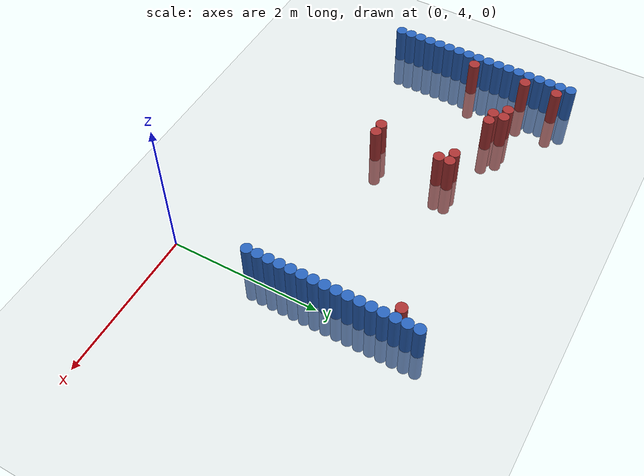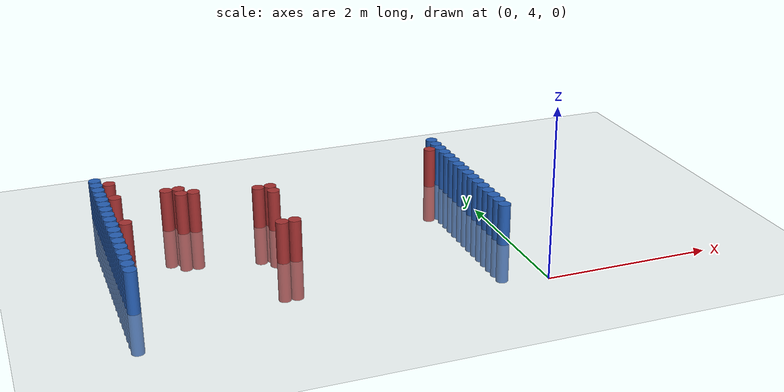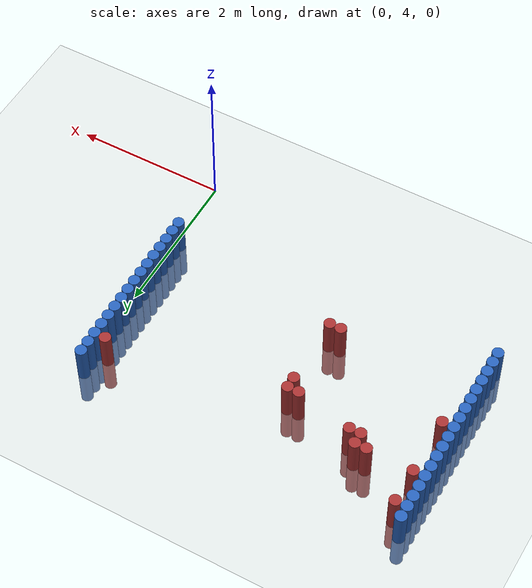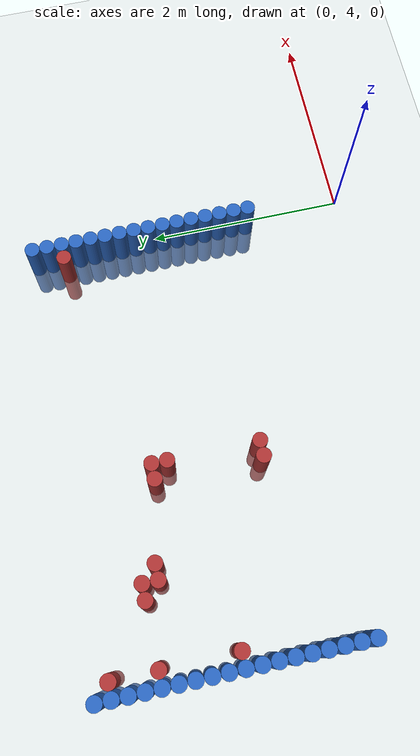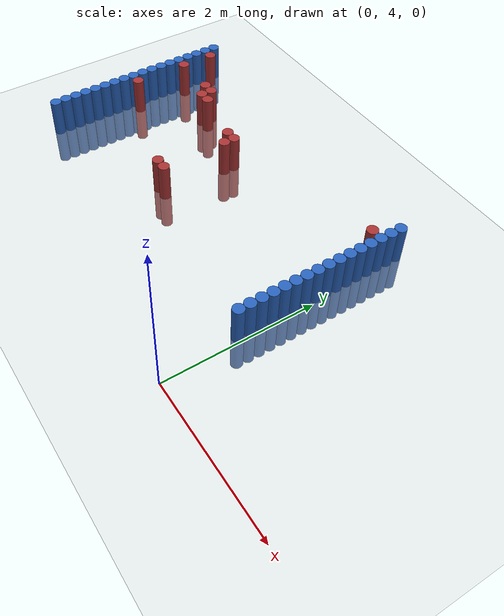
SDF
<sdf version="1.6">
 <world name="default">
  <model name="ground_plane">
   <static>1</static>
   <link name="link">
    <collision name="collision">
     <geometry><plane><normal>0 0 1</normal><size>100 100</size></plane></geometry>
     <surface><friction><ode><mu>100</mu><mu2>50</mu2></ode></friction></surface>
    </collision>
    <visual name="visual">
     <cast_shadows>0</cast_shadows>
     <geometry><plane><normal>0 0 1</normal><size>100 100</size></plane></geometry>
     <material>
      <script><uri>file://media/materials/scripts/gazebo.material</uri><name>Gazebo/Grey</name></script>
     </material>
    </visual>
   </link>
  </model>
  <model name="unit_cylinder_93">
   <static>1</static>
   <pose>-4.425000 4.875000 0.000000 0.000000 0.000000 0.000000</pose>
   <link name="link">
    <inertial>
     <mass>1</mass>
     <inertia><ixx>0.145833</ixx><ixy>0</ixy><ixz>0</ixz><iyy>0.145833</iyy><iyz>0</iyz><izz>0.125</izz></inertia>
    </inertial>
    <collision name="collision">
     <geometry><cylinder><radius>0.075000</radius><length>1</length></cylinder></geometry>
    </collision>
    <visual name="visual">
     <geometry><cylinder><radius>0.075000</radius><length>1</length></cylinder></geometry>
     <material>
      <ambient>0.152000 0.379000 0.720000 1</ambient>
      <diffuse>0.152000 0.379000 0.720000 1</diffuse>
     </material>
     <material>
      <script><name>Gazebo/Grey</name><uri>file://media/materials/scripts/gazebo.material</uri></script>
     </material>
    </visual>
   </link>
  </model>
  <model name="unit_cylinder_94">
   <static>1</static>
   <pose>-0.075000 5.025000 0.000000 0.000000 0.000000 0.000000</pose>
   <link name="link">
    <inertial>
     <mass>1</mass>
     <inertia><ixx>0.145833</ixx><ixy>0</ixy><ixz>0</ixz><iyy>0.145833</iyy><iyz>0</iyz><izz>0.125</izz></inertia>
    </inertial>
    <collision name="collision">
     <geometry><cylinder><radius>0.075000</radius><length>1</length></cylinder></geometry>
    </collision>
    <visual name="visual">
     <geometry><cylinder><radius>0.075000</radius><length>1</length></cylinder></geometry>
     <material>
      <ambient>0.152000 0.379000 0.720000 1</ambient>
      <diffuse>0.152000 0.379000 0.720000 1</diffuse>
     </material>
     <material>
      <script><name>Gazebo/Grey</name><uri>file://media/materials/scripts/gazebo.material</uri></script>
     </material>
    </visual>
   </link>
  </model>
  <model name="unit_cylinder_95">
   <static>1</static>
   <pose>-4.425000 5.025000 0.000000 0.000000 0.000000 0.000000</pose>
   <link name="link">
    <inertial>
     <mass>1</mass>
     <inertia><ixx>0.145833</ixx><ixy>0</ixy><ixz>0</ixz><iyy>0.145833</iyy><iyz>0</iyz><izz>0.125</izz></inertia>
    </inertial>
    <collision name="collision">
     <geometry><cylinder><radius>0.075000</radius><length>1</length></cylinder></geometry>
    </collision>
    <visual name="visual">
     <geometry><cylinder><radius>0.075000</radius><length>1</length></cylinder></geometry>
     <material>
      <ambient>0.152000 0.379000 0.720000 1</ambient>
      <diffuse>0.152000 0.379000 0.720000 1</diffuse>
     </material>
     <material>
      <script><name>Gazebo/Grey</name><uri>file://media/materials/scripts/gazebo.material</uri></script>
     </material>
    </visual>
   </link>
  </model>
  <model name="unit_cylinder_96">
   <static>1</static>
   <pose>-4.425000 5.175000 0.000000 0.000000 0.000000 0.000000</pose>
   <link name="link">
    <inertial>
     <mass>1</mass>
     <inertia><ixx>0.145833</ixx><ixy>0</ixy><ixz>0</ixz><iyy>0.145833</iyy><iyz>0</iyz><izz>0.125</izz></inertia>
    </inertial>
    <collision name="collision">
     <geometry><cylinder><radius>0.075000</radius><length>1</length></cylinder></geometry>
    </collision>
    <visual name="visual">
     <geometry><cylinder><radius>0.075000</radius><length>1</length></cylinder></geometry>
     <material>
      <ambient>0.152000 0.379000 0.720000 1</ambient>
      <diffuse>0.152000 0.379000 0.720000 1</diffuse>
     </material>
     <material>
      <script><name>Gazebo/Grey</name><uri>file://media/materials/scripts/gazebo.material</uri></script>
     </material>
    </visual>
   </link>
  </model>
  <model name="unit_cylinder_97">
   <static>1</static>
   <pose>-4.425000 5.325000 0.000000 0.000000 0.000000 0.000000</pose>
   <link name="link">
    <inertial>
     <mass>1</mass>
     <inertia><ixx>0.145833</ixx><ixy>0</ixy><ixz>0</ixz><iyy>0.145833</iyy><iyz>0</iyz><izz>0.125</izz></inertia>
    </inertial>
    <collision name="collision">
     <geometry><cylinder><radius>0.075000</radius><length>1</length></cylinder></geometry>
    </collision>
    <visual name="visual">
     <geometry><cylinder><radius>0.075000</radius><length>1</length></cylinder></geometry>
     <material>
      <ambient>0.152000 0.379000 0.720000 1</ambient>
      <diffuse>0.152000 0.379000 0.720000 1</diffuse>
     </material>
     <material>
      <script><name>Gazebo/Grey</name><uri>file://media/materials/scripts/gazebo.material</uri></script>
     </material>
    </visual>
   </link>
  </model>
  <model name="unit_cylinder_98">
   <static>1</static>
   <pose>-4.425000 5.475000 0.000000 0.000000 0.000000 0.000000</pose>
   <link name="link">
    <inertial>
     <mass>1</mass>
     <inertia><ixx>0.145833</ixx><ixy>0</ixy><ixz>0</ixz><iyy>0.145833</iyy><iyz>0</iyz><izz>0.125</izz></inertia>
    </inertial>
    <collision name="collision">
     <geometry><cylinder><radius>0.075000</radius><length>1</length></cylinder></geometry>
    </collision>
    <visual name="visual">
     <geometry><cylinder><radius>0.075000</radius><length>1</length></cylinder></geometry>
     <material>
      <ambient>0.152000 0.379000 0.720000 1</ambient>
      <diffuse>0.152000 0.379000 0.720000 1</diffuse>
     </material>
     <material>
      <script><name>Gazebo/Grey</name><uri>file://media/materials/scripts/gazebo.material</uri></script>
     </material>
    </visual>
   </link>
  </model>
  <model name="unit_cylinder_99">
   <static>1</static>
   <pose>-4.425000 5.625000 0.000000 0.000000 0.000000 0.000000</pose>
   <link name="link">
    <inertial>
     <mass>1</mass>
     <inertia><ixx>0.145833</ixx><ixy>0</ixy><ixz>0</ixz><iyy>0.145833</iyy><iyz>0</iyz><izz>0.125</izz></inertia>
    </inertial>
    <collision name="collision">
     <geometry><cylinder><radius>0.075000</radius><length>1</length></cylinder></geometry>
    </collision>
    <visual name="visual">
     <geometry><cylinder><radius>0.075000</radius><length>1</length></cylinder></geometry>
     <material>
      <ambient>0.152000 0.379000 0.720000 1</ambient>
      <diffuse>0.152000 0.379000 0.720000 1</diffuse>
     </material>
     <material>
      <script><name>Gazebo/Grey</name><uri>file://media/materials/scripts/gazebo.material</uri></script>
     </material>
    </visual>
   </link>
  </model>
  <model name="unit_cylinder_100">
   <static>1</static>
   <pose>-4.425000 5.775000 0.000000 0.000000 0.000000 0.000000</pose>
   <link name="link">
    <inertial>
     <mass>1</mass>
     <inertia><ixx>0.145833</ixx><ixy>0</ixy><ixz>0</ixz><iyy>0.145833</iyy><iyz>0</iyz><izz>0.125</izz></inertia>
    </inertial>
    <collision name="collision">
     <geometry><cylinder><radius>0.075000</radius><length>1</length></cylinder></geometry>
    </collision>
    <visual name="visual">
     <geometry><cylinder><radius>0.075000</radius><length>1</length></cylinder></geometry>
     <material>
      <ambient>0.152000 0.379000 0.720000 1</ambient>
      <diffuse>0.152000 0.379000 0.720000 1</diffuse>
     </material>
     <material>
      <script><name>Gazebo/Grey</name><uri>file://media/materials/scripts/gazebo.material</uri></script>
     </material>
    </visual>
   </link>
  </model>
  <model name="unit_cylinder_101">
   <static>1</static>
   <pose>-4.425000 5.925000 0.000000 0.000000 0.000000 0.000000</pose>
   <link name="link">
    <inertial>
     <mass>1</mass>
     <inertia><ixx>0.145833</ixx><ixy>0</ixy><ixz>0</ixz><iyy>0.145833</iyy><iyz>0</iyz><izz>0.125</izz></inertia>
    </inertial>
    <collision name="collision">
     <geometry><cylinder><radius>0.075000</radius><length>1</length></cylinder></geometry>
    </collision>
    <visual name="visual">
     <geometry><cylinder><radius>0.075000</radius><length>1</length></cylinder></geometry>
     <material>
      <ambient>0.152000 0.379000 0.720000 1</ambient>
      <diffuse>0.152000 0.379000 0.720000 1</diffuse>
     </material>
     <material>
      <script><name>Gazebo/Grey</name><uri>file://media/materials/scripts/gazebo.material</uri></script>
     </material>
    </visual>
   </link>
  </model>
  <model name="unit_cylinder_102">
   <static>1</static>
   <pose>-4.425000 6.075000 0.000000 0.000000 0.000000 0.000000</pose>
   <link name="link">
    <inertial>
     <mass>1</mass>
     <inertia><ixx>0.145833</ixx><ixy>0</ixy><ixz>0</ixz><iyy>0.145833</iyy><iyz>0</iyz><izz>0.125</izz></inertia>
    </inertial>
    <collision name="collision">
     <geometry><cylinder><radius>0.075000</radius><length>1</length></cylinder></geometry>
    </collision>
    <visual name="visual">
     <geometry><cylinder><radius>0.075000</radius><length>1</length></cylinder></geometry>
     <material>
      <ambient>0.152000 0.379000 0.720000 1</ambient>
      <diffuse>0.152000 0.379000 0.720000 1</diffuse>
     </material>
     <material>
      <script><name>Gazebo/Grey</name><uri>file://media/materials/scripts/gazebo.material</uri></script>
     </material>
    </visual>
   </link>
  </model>
  <model name="unit_cylinder_103">
   <static>1</static>
   <pose>-4.425000 6.225000 0.000000 0.000000 0.000000 0.000000</pose>
   <link name="link">
    <inertial>
     <mass>1</mass>
     <inertia><ixx>0.145833</ixx><ixy>0</ixy><ixz>0</ixz><iyy>0.145833</iyy><iyz>0</iyz><izz>0.125</izz></inertia>
    </inertial>
    <collision name="collision">
     <geometry><cylinder><radius>0.075000</radius><length>1</length></cylinder></geometry>
    </collision>
    <visual name="visual">
     <geometry><cylinder><radius>0.075000</radius><length>1</length></cylinder></geometry>
     <material>
      <ambient>0.152000 0.379000 0.720000 1</ambient>
      <diffuse>0.152000 0.379000 0.720000 1</diffuse>
     </material>
     <material>
      <script><name>Gazebo/Grey</name><uri>file://media/materials/scripts/gazebo.material</uri></script>
     </material>
    </visual>
   </link>
  </model>
  <model name="unit_cylinder_104">
   <static>1</static>
   <pose>-4.425000 6.375000 0.000000 0.000000 0.000000 0.000000</pose>
   <link name="link">
    <inertial>
     <mass>1</mass>
     <inertia><ixx>0.145833</ixx><ixy>0</ixy><ixz>0</ixz><iyy>0.145833</iyy><iyz>0</iyz><izz>0.125</izz></inertia>
    </inertial>
    <collision name="collision">
     <geometry><cylinder><radius>0.075000</radius><length>1</length></cylinder></geometry>
    </collision>
    <visual name="visual">
     <geometry><cylinder><radius>0.075000</radius><length>1</length></cylinder></geometry>
     <material>
      <ambient>0.152000 0.379000 0.720000 1</ambient>
      <diffuse>0.152000 0.379000 0.720000 1</diffuse>
     </material>
     <material>
      <script><name>Gazebo/Grey</name><uri>file://media/materials/scripts/gazebo.material</uri></script>
     </material>
    </visual>
   </link>
  </model>
  <model name="unit_cylinder_105">
   <static>1</static>
   <pose>-4.425000 6.525000 0.000000 0.000000 0.000000 0.000000</pose>
   <link name="link">
    <inertial>
     <mass>1</mass>
     <inertia><ixx>0.145833</ixx><ixy>0</ixy><ixz>0</ixz><iyy>0.145833</iyy><iyz>0</iyz><izz>0.125</izz></inertia>
    </inertial>
    <collision name="collision">
     <geometry><cylinder><radius>0.075000</radius><length>1</length></cylinder></geometry>
    </collision>
    <visual name="visual">
     <geometry><cylinder><radius>0.075000</radius><length>1</length></cylinder></geometry>
     <material>
      <ambient>0.152000 0.379000 0.720000 1</ambient>
      <diffuse>0.152000 0.379000 0.720000 1</diffuse>
     </material>
     <material>
      <script><name>Gazebo/Grey</name><uri>file://media/materials/scripts/gazebo.material</uri></script>
     </material>
    </visual>
   </link>
  </model>
  <model name="unit_cylinder_106">
   <static>1</static>
   <pose>-4.425000 6.675000 0.000000 0.000000 0.000000 0.000000</pose>
   <link name="link">
    <inertial>
     <mass>1</mass>
     <inertia><ixx>0.145833</ixx><ixy>0</ixy><ixz>0</ixz><iyy>0.145833</iyy><iyz>0</iyz><izz>0.125</izz></inertia>
    </inertial>
    <collision name="collision">
     <geometry><cylinder><radius>0.075000</radius><length>1</length></cylinder></geometry>
    </collision>
    <visual name="visual">
     <geometry><cylinder><radius>0.075000</radius><length>1</length></cylinder></geometry>
     <material>
      <ambient>0.152000 0.379000 0.720000 1</ambient>
      <diffuse>0.152000 0.379000 0.720000 1</diffuse>
     </material>
     <material>
      <script><name>Gazebo/Grey</name><uri>file://media/materials/scripts/gazebo.material</uri></script>
     </material>
    </visual>
   </link>
  </model>
  <model name="unit_cylinder_107">
   <static>1</static>
   <pose>-4.425000 6.825000 0.000000 0.000000 0.000000 0.000000</pose>
   <link name="link">
    <inertial>
     <mass>1</mass>
     <inertia><ixx>0.145833</ixx><ixy>0</ixy><ixz>0</ixz><iyy>0.145833</iyy><iyz>0</iyz><izz>0.125</izz></inertia>
    </inertial>
    <collision name="collision">
     <geometry><cylinder><radius>0.075000</radius><length>1</length></cylinder></geometry>
    </collision>
    <visual name="visual">
     <geometry><cylinder><radius>0.075000</radius><length>1</length></cylinder></geometry>
     <material>
      <ambient>0.152000 0.379000 0.720000 1</ambient>
      <diffuse>0.152000 0.379000 0.720000 1</diffuse>
     </material>
     <material>
      <script><name>Gazebo/Grey</name><uri>file://media/materials/scripts/gazebo.material</uri></script>
     </material>
    </visual>
   </link>
  </model>
  <model name="unit_cylinder_108">
   <static>1</static>
   <pose>-4.425000 6.975000 0.000000 0.000000 0.000000 0.000000</pose>
   <link name="link">
    <inertial>
     <mass>1</mass>
     <inertia><ixx>0.145833</ixx><ixy>0</ixy><ixz>0</ixz><iyy>0.145833</iyy><iyz>0</iyz><izz>0.125</izz></inertia>
    </inertial>
    <collision name="collision">
     <geometry><cylinder><radius>0.075000</radius><length>1</length></cylinder></geometry>
    </collision>
    <visual name="visual">
     <geometry><cylinder><radius>0.075000</radius><length>1</length></cylinder></geometry>
     <material>
      <ambient>0.152000 0.379000 0.720000 1</ambient>
      <diffuse>0.152000 0.379000 0.720000 1</diffuse>
     </material>
     <material>
      <script><name>Gazebo/Grey</name><uri>file://media/materials/scripts/gazebo.material</uri></script>
     </material>
    </visual>
   </link>
  </model>
  <model name="unit_cylinder_109">
   <static>1</static>
   <pose>-4.425000 7.125000 0.000000 0.000000 0.000000 0.000000</pose>
   <link name="link">
    <inertial>
     <mass>1</mass>
     <inertia><ixx>0.145833</ixx><ixy>0</ixy><ixz>0</ixz><iyy>0.145833</iyy><iyz>0</iyz><izz>0.125</izz></inertia>
    </inertial>
    <collision name="collision">
     <geometry><cylinder><radius>0.075000</radius><length>1</length></cylinder></geometry>
    </collision>
    <visual name="visual">
     <geometry><cylinder><radius>0.075000</radius><length>1</length></cylinder></geometry>
     <material>
      <ambient>0.152000 0.379000 0.720000 1</ambient>
      <diffuse>0.152000 0.379000 0.720000 1</diffuse>
     </material>
     <material>
      <script><name>Gazebo/Grey</name><uri>file://media/materials/scripts/gazebo.material</uri></script>
     </material>
    </visual>
   </link>
  </model>
  <model name="unit_cylinder_110">
   <static>1</static>
   <pose>-4.425000 7.275000 0.000000 0.000000 0.000000 0.000000</pose>
   <link name="link">
    <inertial>
     <mass>1</mass>
     <inertia><ixx>0.145833</ixx><ixy>0</ixy><ixz>0</ixz><iyy>0.145833</iyy><iyz>0</iyz><izz>0.125</izz></inertia>
    </inertial>
    <collision name="collision">
     <geometry><cylinder><radius>0.075000</radius><length>1</length></cylinder></geometry>
    </collision>
    <visual name="visual">
     <geometry><cylinder><radius>0.075000</radius><length>1</length></cylinder></geometry>
     <material>
      <ambient>0.152000 0.379000 0.720000 1</ambient>
      <diffuse>0.152000 0.379000 0.720000 1</diffuse>
     </material>
     <material>
      <script><name>Gazebo/Grey</name><uri>file://media/materials/scripts/gazebo.material</uri></script>
     </material>
    </visual>
   </link>
  </model>
  <model name="unit_cylinder_111">
   <static>1</static>
   <pose>-4.425000 7.425000 0.000000 0.000000 0.000000 0.000000</pose>
   <link name="link">
    <inertial>
     <mass>1</mass>
     <inertia><ixx>0.145833</ixx><ixy>0</ixy><ixz>0</ixz><iyy>0.145833</iyy><iyz>0</iyz><izz>0.125</izz></inertia>
    </inertial>
    <collision name="collision">
     <geometry><cylinder><radius>0.075000</radius><length>1</length></cylinder></geometry>
    </collision>
    <visual name="visual">
     <geometry><cylinder><radius>0.075000</radius><length>1</length></cylinder></geometry>
     <material>
      <ambient>0.152000 0.379000 0.720000 1</ambient>
      <diffuse>0.152000 0.379000 0.720000 1</diffuse>
     </material>
     <material>
      <script><name>Gazebo/Grey</name><uri>file://media/materials/scripts/gazebo.material</uri></script>
     </material>
    </visual>
   </link>
  </model>
  <model name="unit_cylinder_126">
   <static>1</static>
   <pose>-4.275000 6.075000 0.000000 0.000000 0.000000 0.000000</pose>
   <link name="link">
    <inertial>
     <mass>1</mass>
     <inertia><ixx>0.145833</ixx><ixy>0</ixy><ixz>0</ixz><iyy>0.145833</iyy><iyz>0</iyz><izz>0.125</izz></inertia>
    </inertial>
    <collision name="collision">
     <geometry><cylinder><radius>0.075000</radius><length>1</length></cylinder></geometry>
    </collision>
    <visual name="visual">
     <geometry><cylinder><radius>0.075000</radius><length>1</length></cylinder></geometry>
     <material>
      <ambient>0.648000 0.192000 0.192000 1</ambient>
      <diffuse>0.648000 0.192000 0.192000 1</diffuse>
     </material>
     <material>
      <script><name>Gazebo/Grey</name><uri>file://media/materials/scripts/gazebo.material</uri></script>
     </material>
    </visual>
   </link>
  </model>
  <model name="unit_cylinder_127">
   <static>1</static>
   <pose>-4.275000 6.825000 0.000000 0.000000 0.000000 0.000000</pose>
   <link name="link">
    <inertial>
     <mass>1</mass>
     <inertia><ixx>0.145833</ixx><ixy>0</ixy><ixz>0</ixz><iyy>0.145833</iyy><iyz>0</iyz><izz>0.125</izz></inertia>
    </inertial>
    <collision name="collision">
     <geometry><cylinder><radius>0.075000</radius><length>1</length></cylinder></geometry>
    </collision>
    <visual name="visual">
     <geometry><cylinder><radius>0.075000</radius><length>1</length></cylinder></geometry>
     <material>
      <ambient>0.648000 0.192000 0.192000 1</ambient>
      <diffuse>0.648000 0.192000 0.192000 1</diffuse>
     </material>
     <material>
      <script><name>Gazebo/Grey</name><uri>file://media/materials/scripts/gazebo.material</uri></script>
     </material>
    </visual>
   </link>
  </model>
  <model name="unit_cylinder_128">
   <static>1</static>
   <pose>-4.275000 7.275000 0.000000 0.000000 0.000000 0.000000</pose>
   <link name="link">
    <inertial>
     <mass>1</mass>
     <inertia><ixx>0.145833</ixx><ixy>0</ixy><ixz>0</ixz><iyy>0.145833</iyy><iyz>0</iyz><izz>0.125</izz></inertia>
    </inertial>
    <collision name="collision">
     <geometry><cylinder><radius>0.075000</radius><length>1</length></cylinder></geometry>
    </collision>
    <visual name="visual">
     <geometry><cylinder><radius>0.075000</radius><length>1</length></cylinder></geometry>
     <material>
      <ambient>0.648000 0.192000 0.192000 1</ambient>
      <diffuse>0.648000 0.192000 0.192000 1</diffuse>
     </material>
     <material>
      <script><name>Gazebo/Grey</name><uri>file://media/materials/scripts/gazebo.material</uri></script>
     </material>
    </visual>
   </link>
  </model>
  <model name="unit_cylinder_134">
   <static>1</static>
   <pose>-3.675000 6.825000 0.000000 0.000000 0.000000 0.000000</pose>
   <link name="link">
    <inertial>
     <mass>1</mass>
     <inertia><ixx>0.145833</ixx><ixy>0</ixy><ixz>0</ixz><iyy>0.145833</iyy><iyz>0</iyz><izz>0.125</izz></inertia>
    </inertial>
    <collision name="collision">
     <geometry><cylinder><radius>0.075000</radius><length>1</length></cylinder></geometry>
    </collision>
    <visual name="visual">
     <geometry><cylinder><radius>0.075000</radius><length>1</length></cylinder></geometry>
     <material>
      <ambient>0.648000 0.192000 0.192000 1</ambient>
      <diffuse>0.648000 0.192000 0.192000 1</diffuse>
     </material>
     <material>
      <script><name>Gazebo/Grey</name><uri>file://media/materials/scripts/gazebo.material</uri></script>
     </material>
    </visual>
   </link>
  </model>
  <model name="unit_cylinder_135">
   <static>1</static>
   <pose>-3.525000 6.675000 0.000000 0.000000 0.000000 0.000000</pose>
   <link name="link">
    <inertial>
     <mass>1</mass>
     <inertia><ixx>0.145833</ixx><ixy>0</ixy><ixz>0</ixz><iyy>0.145833</iyy><iyz>0</iyz><izz>0.125</izz></inertia>
    </inertial>
    <collision name="collision">
     <geometry><cylinder><radius>0.075000</radius><length>1</length></cylinder></geometry>
    </collision>
    <visual name="visual">
     <geometry><cylinder><radius>0.075000</radius><length>1</length></cylinder></geometry>
     <material>
      <ambient>0.648000 0.192000 0.192000 1</ambient>
      <diffuse>0.648000 0.192000 0.192000 1</diffuse>
     </material>
     <material>
      <script><name>Gazebo/Grey</name><uri>file://media/materials/scripts/gazebo.material</uri></script>
     </material>
    </visual>
   </link>
  </model>
  <model name="unit_cylinder_136">
   <static>1</static>
   <pose>-3.525000 6.825000 0.000000 0.000000 0.000000 0.000000</pose>
   <link name="link">
    <inertial>
     <mass>1</mass>
     <inertia><ixx>0.145833</ixx><ixy>0</ixy><ixz>0</ixz><iyy>0.145833</iyy><iyz>0</iyz><izz>0.125</izz></inertia>
    </inertial>
    <collision name="collision">
     <geometry><cylinder><radius>0.075000</radius><length>1</length></cylinder></geometry>
    </collision>
    <visual name="visual">
     <geometry><cylinder><radius>0.075000</radius><length>1</length></cylinder></geometry>
     <material>
      <ambient>0.648000 0.192000 0.192000 1</ambient>
      <diffuse>0.648000 0.192000 0.192000 1</diffuse>
     </material>
     <material>
      <script><name>Gazebo/Grey</name><uri>file://media/materials/scripts/gazebo.material</uri></script>
     </material>
    </visual>
   </link>
  </model>
  <model name="unit_cylinder_137">
   <static>1</static>
   <pose>-3.375000 6.675000 0.000000 0.000000 0.000000 0.000000</pose>
   <link name="link">
    <inertial>
     <mass>1</mass>
     <inertia><ixx>0.145833</ixx><ixy>0</ixy><ixz>0</ixz><iyy>0.145833</iyy><iyz>0</iyz><izz>0.125</izz></inertia>
    </inertial>
    <collision name="collision">
     <geometry><cylinder><radius>0.075000</radius><length>1</length></cylinder></geometry>
    </collision>
    <visual name="visual">
     <geometry><cylinder><radius>0.075000</radius><length>1</length></cylinder></geometry>
     <material>
      <ambient>0.648000 0.192000 0.192000 1</ambient>
      <diffuse>0.648000 0.192000 0.192000 1</diffuse>
     </material>
     <material>
      <script><name>Gazebo/Grey</name><uri>file://media/materials/scripts/gazebo.material</uri></script>
     </material>
    </visual>
   </link>
  </model>
  <model name="unit_cylinder_139">
   <static>1</static>
   <pose>-2.625000 5.475000 0.000000 0.000000 0.000000 0.000000</pose>
   <link name="link">
    <inertial>
     <mass>1</mass>
     <inertia><ixx>0.145833</ixx><ixy>0</ixy><ixz>0</ixz><iyy>0.145833</iyy><iyz>0</iyz><izz>0.125</izz></inertia>
    </inertial>
    <collision name="collision">
     <geometry><cylinder><radius>0.075000</radius><length>1</length></cylinder></geometry>
    </collision>
    <visual name="visual">
     <geometry><cylinder><radius>0.075000</radius><length>1</length></cylinder></geometry>
     <material>
      <ambient>0.648000 0.192000 0.192000 1</ambient>
      <diffuse>0.648000 0.192000 0.192000 1</diffuse>
     </material>
     <material>
      <script><name>Gazebo/Grey</name><uri>file://media/materials/scripts/gazebo.material</uri></script>
     </material>
    </visual>
   </link>
  </model>
  <model name="unit_cylinder_140">
   <static>1</static>
   <pose>-2.625000 6.525000 0.000000 0.000000 0.000000 0.000000</pose>
   <link name="link">
    <inertial>
     <mass>1</mass>
     <inertia><ixx>0.145833</ixx><ixy>0</ixy><ixz>0</ixz><iyy>0.145833</iyy><iyz>0</iyz><izz>0.125</izz></inertia>
    </inertial>
    <collision name="collision">
     <geometry><cylinder><radius>0.075000</radius><length>1</length></cylinder></geometry>
    </collision>
    <visual name="visual">
     <geometry><cylinder><radius>0.075000</radius><length>1</length></cylinder></geometry>
     <material>
      <ambient>0.648000 0.192000 0.192000 1</ambient>
      <diffuse>0.648000 0.192000 0.192000 1</diffuse>
     </material>
     <material>
      <script><name>Gazebo/Grey</name><uri>file://media/materials/scripts/gazebo.material</uri></script>
     </material>
    </visual>
   </link>
  </model>
  <model name="unit_cylinder_141">
   <static>1</static>
   <pose>-2.475000 5.475000 0.000000 0.000000 0.000000 0.000000</pose>
   <link name="link">
    <inertial>
     <mass>1</mass>
     <inertia><ixx>0.145833</ixx><ixy>0</ixy><ixz>0</ixz><iyy>0.145833</iyy><iyz>0</iyz><izz>0.125</izz></inertia>
    </inertial>
    <collision name="collision">
     <geometry><cylinder><radius>0.075000</radius><length>1</length></cylinder></geometry>
    </collision>
    <visual name="visual">
     <geometry><cylinder><radius>0.075000</radius><length>1</length></cylinder></geometry>
     <material>
      <ambient>0.648000 0.192000 0.192000 1</ambient>
      <diffuse>0.648000 0.192000 0.192000 1</diffuse>
     </material>
     <material>
      <script><name>Gazebo/Grey</name><uri>file://media/materials/scripts/gazebo.material</uri></script>
     </material>
    </visual>
   </link>
  </model>
  <model name="unit_cylinder_142">
   <static>1</static>
   <pose>-2.475000 6.375000 0.000000 0.000000 0.000000 0.000000</pose>
   <link name="link">
    <inertial>
     <mass>1</mass>
     <inertia><ixx>0.145833</ixx><ixy>0</ixy><ixz>0</ixz><iyy>0.145833</iyy><iyz>0</iyz><izz>0.125</izz></inertia>
    </inertial>
    <collision name="collision">
     <geometry><cylinder><radius>0.075000</radius><length>1</length></cylinder></geometry>
    </collision>
    <visual name="visual">
     <geometry><cylinder><radius>0.075000</radius><length>1</length></cylinder></geometry>
     <material>
      <ambient>0.648000 0.192000 0.192000 1</ambient>
      <diffuse>0.648000 0.192000 0.192000 1</diffuse>
     </material>
     <material>
      <script><name>Gazebo/Grey</name><uri>file://media/materials/scripts/gazebo.material</uri></script>
     </material>
    </visual>
   </link>
  </model>
  <model name="unit_cylinder_143">
   <static>1</static>
   <pose>-2.475000 6.525000 0.000000 0.000000 0.000000 0.000000</pose>
   <link name="link">
    <inertial>
     <mass>1</mass>
     <inertia><ixx>0.145833</ixx><ixy>0</ixy><ixz>0</ixz><iyy>0.145833</iyy><iyz>0</iyz><izz>0.125</izz></inertia>
    </inertial>
    <collision name="collision">
     <geometry><cylinder><radius>0.075000</radius><length>1</length></cylinder></geometry>
    </collision>
    <visual name="visual">
     <geometry><cylinder><radius>0.075000</radius><length>1</length></cylinder></geometry>
     <material>
      <ambient>0.648000 0.192000 0.192000 1</ambient>
      <diffuse>0.648000 0.192000 0.192000 1</diffuse>
     </material>
     <material>
      <script><name>Gazebo/Grey</name><uri>file://media/materials/scripts/gazebo.material</uri></script>
     </material>
    </visual>
   </link>
  </model>
  <model name="unit_cylinder_149">
   <static>1</static>
   <pose>-0.225000 6.975000 0.000000 0.000000 0.000000 0.000000</pose>
   <link name="link">
    <inertial>
     <mass>1</mass>
     <inertia><ixx>0.145833</ixx><ixy>0</ixy><ixz>0</ixz><iyy>0.145833</iyy><iyz>0</iyz><izz>0.125</izz></inertia>
    </inertial>
    <collision name="collision">
     <geometry><cylinder><radius>0.075000</radius><length>1</length></cylinder></geometry>
    </collision>
    <visual name="visual">
     <geometry><cylinder><radius>0.075000</radius><length>1</length></cylinder></geometry>
     <material>
      <ambient>0.648000 0.192000 0.192000 1</ambient>
      <diffuse>0.648000 0.192000 0.192000 1</diffuse>
     </material>
     <material>
      <script><name>Gazebo/Grey</name><uri>file://media/materials/scripts/gazebo.material</uri></script>
     </material>
    </visual>
   </link>
  </model>
  <model name="unit_cylinder_156">
   <static>1</static>
   <pose>-0.075000 5.175000 0.000000 0.000000 0.000000 0.000000</pose>
   <link name="link">
    <inertial>
     <mass>1</mass>
     <inertia><ixx>0.145833</ixx><ixy>0</ixy><ixz>0</ixz><iyy>0.145833</iyy><iyz>0</iyz><izz>0.125</izz></inertia>
    </inertial>
    <collision name="collision">
     <geometry><cylinder><radius>0.075000</radius><length>1</length></cylinder></geometry>
    </collision>
    <visual name="visual">
     <geometry><cylinder><radius>0.075000</radius><length>1</length></cylinder></geometry>
     <material>
      <ambient>0.152000 0.379000 0.720000 1</ambient>
      <diffuse>0.152000 0.379000 0.720000 1</diffuse>
     </material>
     <material>
      <script><name>Gazebo/Grey</name><uri>file://media/materials/scripts/gazebo.material</uri></script>
     </material>
    </visual>
   </link>
  </model>
  <model name="unit_cylinder_157">
   <static>1</static>
   <pose>-0.075000 5.325000 0.000000 0.000000 0.000000 0.000000</pose>
   <link name="link">
    <inertial>
     <mass>1</mass>
     <inertia><ixx>0.145833</ixx><ixy>0</ixy><ixz>0</ixz><iyy>0.145833</iyy><iyz>0</iyz><izz>0.125</izz></inertia>
    </inertial>
    <collision name="collision">
     <geometry><cylinder><radius>0.075000</radius><length>1</length></cylinder></geometry>
    </collision>
    <visual name="visual">
     <geometry><cylinder><radius>0.075000</radius><length>1</length></cylinder></geometry>
     <material>
      <ambient>0.152000 0.379000 0.720000 1</ambient>
      <diffuse>0.152000 0.379000 0.720000 1</diffuse>
     </material>
     <material>
      <script><name>Gazebo/Grey</name><uri>file://media/materials/scripts/gazebo.material</uri></script>
     </material>
    </visual>
   </link>
  </model>
  <model name="unit_cylinder_158">
   <static>1</static>
   <pose>-0.075000 5.475000 0.000000 0.000000 0.000000 0.000000</pose>
   <link name="link">
    <inertial>
     <mass>1</mass>
     <inertia><ixx>0.145833</ixx><ixy>0</ixy><ixz>0</ixz><iyy>0.145833</iyy><iyz>0</iyz><izz>0.125</izz></inertia>
    </inertial>
    <collision name="collision">
     <geometry><cylinder><radius>0.075000</radius><length>1</length></cylinder></geometry>
    </collision>
    <visual name="visual">
     <geometry><cylinder><radius>0.075000</radius><length>1</length></cylinder></geometry>
     <material>
      <ambient>0.152000 0.379000 0.720000 1</ambient>
      <diffuse>0.152000 0.379000 0.720000 1</diffuse>
     </material>
     <material>
      <script><name>Gazebo/Grey</name><uri>file://media/materials/scripts/gazebo.material</uri></script>
     </material>
    </visual>
   </link>
  </model>
  <model name="unit_cylinder_159">
   <static>1</static>
   <pose>-0.075000 5.625000 0.000000 0.000000 0.000000 0.000000</pose>
   <link name="link">
    <inertial>
     <mass>1</mass>
     <inertia><ixx>0.145833</ixx><ixy>0</ixy><ixz>0</ixz><iyy>0.145833</iyy><iyz>0</iyz><izz>0.125</izz></inertia>
    </inertial>
    <collision name="collision">
     <geometry><cylinder><radius>0.075000</radius><length>1</length></cylinder></geometry>
    </collision>
    <visual name="visual">
     <geometry><cylinder><radius>0.075000</radius><length>1</length></cylinder></geometry>
     <material>
      <ambient>0.152000 0.379000 0.720000 1</ambient>
      <diffuse>0.152000 0.379000 0.720000 1</diffuse>
     </material>
     <material>
      <script><name>Gazebo/Grey</name><uri>file://media/materials/scripts/gazebo.material</uri></script>
     </material>
    </visual>
   </link>
  </model>
  <model name="unit_cylinder_160">
   <static>1</static>
   <pose>-0.075000 5.775000 0.000000 0.000000 0.000000 0.000000</pose>
   <link name="link">
    <inertial>
     <mass>1</mass>
     <inertia><ixx>0.145833</ixx><ixy>0</ixy><ixz>0</ixz><iyy>0.145833</iyy><iyz>0</iyz><izz>0.125</izz></inertia>
    </inertial>
    <collision name="collision">
     <geometry><cylinder><radius>0.075000</radius><length>1</length></cylinder></geometry>
    </collision>
    <visual name="visual">
     <geometry><cylinder><radius>0.075000</radius><length>1</length></cylinder></geometry>
     <material>
      <ambient>0.152000 0.379000 0.720000 1</ambient>
      <diffuse>0.152000 0.379000 0.720000 1</diffuse>
     </material>
     <material>
      <script><name>Gazebo/Grey</name><uri>file://media/materials/scripts/gazebo.material</uri></script>
     </material>
    </visual>
   </link>
  </model>
  <model name="unit_cylinder_161">
   <static>1</static>
   <pose>-0.075000 5.925000 0.000000 0.000000 0.000000 0.000000</pose>
   <link name="link">
    <inertial>
     <mass>1</mass>
     <inertia><ixx>0.145833</ixx><ixy>0</ixy><ixz>0</ixz><iyy>0.145833</iyy><iyz>0</iyz><izz>0.125</izz></inertia>
    </inertial>
    <collision name="collision">
     <geometry><cylinder><radius>0.075000</radius><length>1</length></cylinder></geometry>
    </collision>
    <visual name="visual">
     <geometry><cylinder><radius>0.075000</radius><length>1</length></cylinder></geometry>
     <material>
      <ambient>0.152000 0.379000 0.720000 1</ambient>
      <diffuse>0.152000 0.379000 0.720000 1</diffuse>
     </material>
     <material>
      <script><name>Gazebo/Grey</name><uri>file://media/materials/scripts/gazebo.material</uri></script>
     </material>
    </visual>
   </link>
  </model>
  <model name="unit_cylinder_162">
   <static>1</static>
   <pose>-0.075000 6.075000 0.000000 0.000000 0.000000 0.000000</pose>
   <link name="link">
    <inertial>
     <mass>1</mass>
     <inertia><ixx>0.145833</ixx><ixy>0</ixy><ixz>0</ixz><iyy>0.145833</iyy><iyz>0</iyz><izz>0.125</izz></inertia>
    </inertial>
    <collision name="collision">
     <geometry><cylinder><radius>0.075000</radius><length>1</length></cylinder></geometry>
    </collision>
    <visual name="visual">
     <geometry><cylinder><radius>0.075000</radius><length>1</length></cylinder></geometry>
     <material>
      <ambient>0.152000 0.379000 0.720000 1</ambient>
      <diffuse>0.152000 0.379000 0.720000 1</diffuse>
     </material>
     <material>
      <script><name>Gazebo/Grey</name><uri>file://media/materials/scripts/gazebo.material</uri></script>
     </material>
    </visual>
   </link>
  </model>
  <model name="unit_cylinder_163">
   <static>1</static>
   <pose>-0.075000 6.225000 0.000000 0.000000 0.000000 0.000000</pose>
   <link name="link">
    <inertial>
     <mass>1</mass>
     <inertia><ixx>0.145833</ixx><ixy>0</ixy><ixz>0</ixz><iyy>0.145833</iyy><iyz>0</iyz><izz>0.125</izz></inertia>
    </inertial>
    <collision name="collision">
     <geometry><cylinder><radius>0.075000</radius><length>1</length></cylinder></geometry>
    </collision>
    <visual name="visual">
     <geometry><cylinder><radius>0.075000</radius><length>1</length></cylinder></geometry>
     <material>
      <ambient>0.152000 0.379000 0.720000 1</ambient>
      <diffuse>0.152000 0.379000 0.720000 1</diffuse>
     </material>
     <material>
      <script><name>Gazebo/Grey</name><uri>file://media/materials/scripts/gazebo.material</uri></script>
     </material>
    </visual>
   </link>
  </model>
  <model name="unit_cylinder_164">
   <static>1</static>
   <pose>-0.075000 6.375000 0.000000 0.000000 0.000000 0.000000</pose>
   <link name="link">
    <inertial>
     <mass>1</mass>
     <inertia><ixx>0.145833</ixx><ixy>0</ixy><ixz>0</ixz><iyy>0.145833</iyy><iyz>0</iyz><izz>0.125</izz></inertia>
    </inertial>
    <collision name="collision">
     <geometry><cylinder><radius>0.075000</radius><length>1</length></cylinder></geometry>
    </collision>
    <visual name="visual">
     <geometry><cylinder><radius>0.075000</radius><length>1</length></cylinder></geometry>
     <material>
      <ambient>0.152000 0.379000 0.720000 1</ambient>
      <diffuse>0.152000 0.379000 0.720000 1</diffuse>
     </material>
     <material>
      <script><name>Gazebo/Grey</name><uri>file://media/materials/scripts/gazebo.material</uri></script>
     </material>
    </visual>
   </link>
  </model>
  <model name="unit_cylinder_165">
   <static>1</static>
   <pose>-0.075000 6.525000 0.000000 0.000000 0.000000 0.000000</pose>
   <link name="link">
    <inertial>
     <mass>1</mass>
     <inertia><ixx>0.145833</ixx><ixy>0</ixy><ixz>0</ixz><iyy>0.145833</iyy><iyz>0</iyz><izz>0.125</izz></inertia>
    </inertial>
    <collision name="collision">
     <geometry><cylinder><radius>0.075000</radius><length>1</length></cylinder></geometry>
    </collision>
    <visual name="visual">
     <geometry><cylinder><radius>0.075000</radius><length>1</length></cylinder></geometry>
     <material>
      <ambient>0.152000 0.379000 0.720000 1</ambient>
      <diffuse>0.152000 0.379000 0.720000 1</diffuse>
     </material>
     <material>
      <script><name>Gazebo/Grey</name><uri>file://media/materials/scripts/gazebo.material</uri></script>
     </material>
    </visual>
   </link>
  </model>
  <model name="unit_cylinder_166">
   <static>1</static>
   <pose>-0.075000 6.675000 0.000000 0.000000 0.000000 0.000000</pose>
   <link name="link">
    <inertial>
     <mass>1</mass>
     <inertia><ixx>0.145833</ixx><ixy>0</ixy><ixz>0</ixz><iyy>0.145833</iyy><iyz>0</iyz><izz>0.125</izz></inertia>
    </inertial>
    <collision name="collision">
     <geometry><cylinder><radius>0.075000</radius><length>1</length></cylinder></geometry>
    </collision>
    <visual name="visual">
     <geometry><cylinder><radius>0.075000</radius><length>1</length></cylinder></geometry>
     <material>
      <ambient>0.152000 0.379000 0.720000 1</ambient>
      <diffuse>0.152000 0.379000 0.720000 1</diffuse>
     </material>
     <material>
      <script><name>Gazebo/Grey</name><uri>file://media/materials/scripts/gazebo.material</uri></script>
     </material>
    </visual>
   </link>
  </model>
  <model name="unit_cylinder_167">
   <static>1</static>
   <pose>-0.075000 6.825000 0.000000 0.000000 0.000000 0.000000</pose>
   <link name="link">
    <inertial>
     <mass>1</mass>
     <inertia><ixx>0.145833</ixx><ixy>0</ixy><ixz>0</ixz><iyy>0.145833</iyy><iyz>0</iyz><izz>0.125</izz></inertia>
    </inertial>
    <collision name="collision">
     <geometry><cylinder><radius>0.075000</radius><length>1</length></cylinder></geometry>
    </collision>
    <visual name="visual">
     <geometry><cylinder><radius>0.075000</radius><length>1</length></cylinder></geometry>
     <material>
      <ambient>0.152000 0.379000 0.720000 1</ambient>
      <diffuse>0.152000 0.379000 0.720000 1</diffuse>
     </material>
     <material>
      <script><name>Gazebo/Grey</name><uri>file://media/materials/scripts/gazebo.material</uri></script>
     </material>
    </visual>
   </link>
  </model>
  <model name="unit_cylinder_168">
   <static>1</static>
   <pose>-0.075000 6.975000 0.000000 0.000000 0.000000 0.000000</pose>
   <link name="link">
    <inertial>
     <mass>1</mass>
     <inertia><ixx>0.145833</ixx><ixy>0</ixy><ixz>0</ixz><iyy>0.145833</iyy><iyz>0</iyz><izz>0.125</izz></inertia>
    </inertial>
    <collision name="collision">
     <geometry><cylinder><radius>0.075000</radius><length>1</length></cylinder></geometry>
    </collision>
    <visual name="visual">
     <geometry><cylinder><radius>0.075000</radius><length>1</length></cylinder></geometry>
     <material>
      <ambient>0.152000 0.379000 0.720000 1</ambient>
      <diffuse>0.152000 0.379000 0.720000 1</diffuse>
     </material>
     <material>
      <script><name>Gazebo/Grey</name><uri>file://media/materials/scripts/gazebo.material</uri></script>
     </material>
    </visual>
   </link>
  </model>
  <model name="unit_cylinder_169">
   <static>1</static>
   <pose>-0.075000 7.125000 0.000000 0.000000 0.000000 0.000000</pose>
   <link name="link">
    <inertial>
     <mass>1</mass>
     <inertia><ixx>0.145833</ixx><ixy>0</ixy><ixz>0</ixz><iyy>0.145833</iyy><iyz>0</iyz><izz>0.125</izz></inertia>
    </inertial>
    <collision name="collision">
     <geometry><cylinder><radius>0.075000</radius><length>1</length></cylinder></geometry>
    </collision>
    <visual name="visual">
     <geometry><cylinder><radius>0.075000</radius><length>1</length></cylinder></geometry>
     <material>
      <ambient>0.152000 0.379000 0.720000 1</ambient>
      <diffuse>0.152000 0.379000 0.720000 1</diffuse>
     </material>
     <material>
      <script><name>Gazebo/Grey</name><uri>file://media/materials/scripts/gazebo.material</uri></script>
     </material>
    </visual>
   </link>
  </model>
  <model name="unit_cylinder_170">
   <static>1</static>
   <pose>-0.075000 7.275000 0.000000 0.000000 0.000000 0.000000</pose>
   <link name="link">
    <inertial>
     <mass>1</mass>
     <inertia><ixx>0.145833</ixx><ixy>0</ixy><ixz>0</ixz><iyy>0.145833</iyy><iyz>0</iyz><izz>0.125</izz></inertia>
    </inertial>
    <collision name="collision">
     <geometry><cylinder><radius>0.075000</radius><length>1</length></cylinder></geometry>
    </collision>
    <visual name="visual">
     <geometry><cylinder><radius>0.075000</radius><length>1</length></cylinder></geometry>
     <material>
      <ambient>0.152000 0.379000 0.720000 1</ambient>
      <diffuse>0.152000 0.379000 0.720000 1</diffuse>
     </material>
     <material>
      <script><name>Gazebo/Grey</name><uri>file://media/materials/scripts/gazebo.material</uri></script>
     </material>
    </visual>
   </link>
  </model>
 </world>
</sdf>
